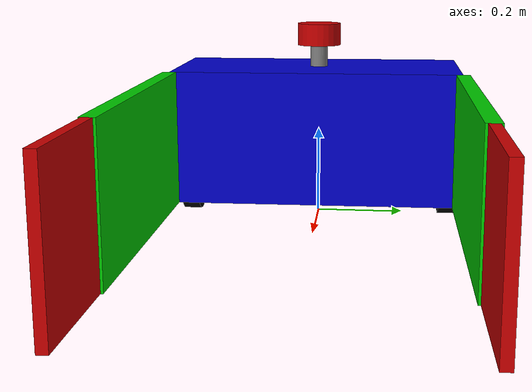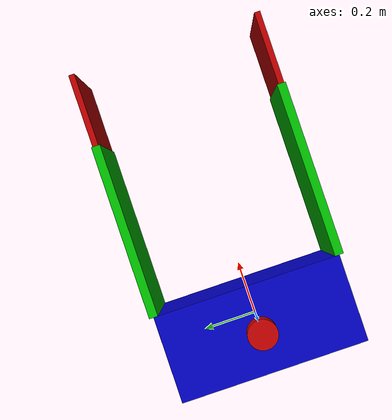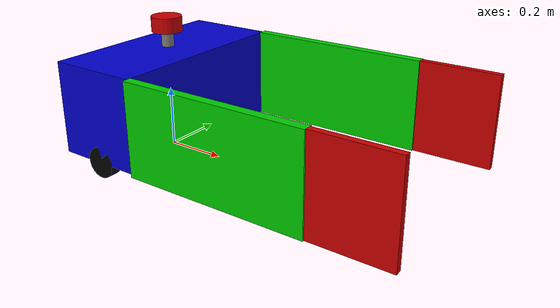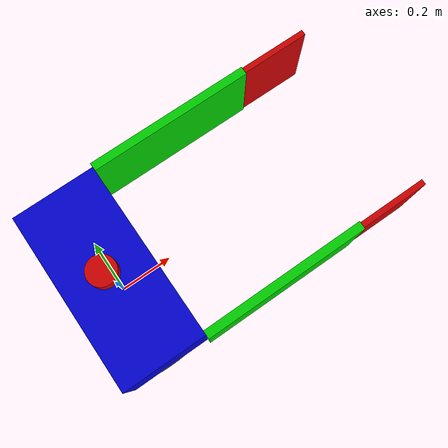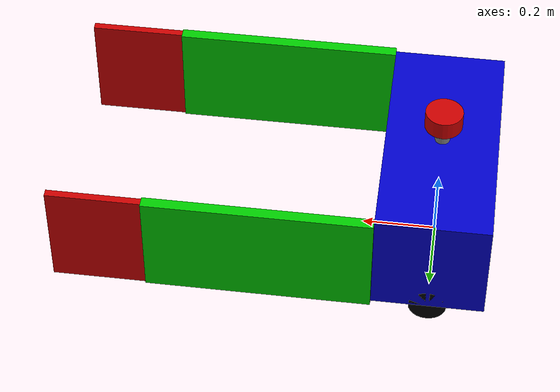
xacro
<?xml version="1.0"?>
<robot xmlns:xacro="http://www.ros.org/wiki/xacro" name="ballbot">

  <!-- DIMENSIONS AND PROPERTIES (ADJUSTED) -->

  <!-- Chassis (Base) Dimensions -->
  <xacro:property name="chassis_len" value="0.30"/>   <!-- Length remains 30cm -->
  <xacro:property name="chassis_width" value="0.65"/> <!-- Width 65cm -->
  <xacro:property name="chassis_height" value="0.3"/>
  <xacro:property name="chassis_mass" value="3.0"/>
  <xacro:property name="chassis_z_offset" value="0.20"/>

  <!-- Wheel Dimensions -->
  <xacro:property name="wheel_radius" value="0.05"/>
  <xacro:property name="wheel_width" value="0.04"/>
  <xacro:property name="wheel_mass" value="0.5"/>
  <!-- Adjusted wheel separation to fit the chassis (0.65m width) -->
  <xacro:property name="wheel_y_offset" value="0.305"/>
  <xacro:property name="wheel_z_offset" value="0.05"/>

  <!-- Castor Dimensions -->
  <xacro:property name="castor_radius" value="0.04"/>
  <xacro:property name="castor_mass" value="1.5"/>
  <!-- Castor position remains the same as chassis length is unchanged -->
  <xacro:property name="castor_x_offset" value="-0.12"/>

  <!-- Arm and Flap Dimensions -->
  <xacro:property name="arm_len" value="0.60"/>     <!-- User updated: 0.60m -->
  <xacro:property name="arm_width" value="0.03"/>   <!-- Arm width remains 3cm -->
  <xacro:property name="arm_height" value="0.3"/>
  <xacro:property name="arm_mass" value="0.04"/>
  <xacro:property name="arm_angle" value="0.0"/>    <!-- Straight forward -->
  <xacro:property name="flap_len" value="0.25"/>    <!-- User updated: 0.25m -->
  <xacro:property name="flap_width" value="0.02"/>
  <xacro:property name="flap_height" value="0.3"/>
  <xacro:property name="flap_mass" value="0.01"/>

  <material name="blue"><color rgba="0.0 0.0 0.8 1.0"/></material>
  <material name="black"><color rgba="0.0 0.0 0.0 1.0"/></material>
  <material name="grey"><color rgba="0.5 0.5 0.5 1.0"/></material>
  <material name="green"><color rgba="0.0 0.8 0.0 1.0"/></material>
  <material name="red"><color rgba="0.8 0.0 0.0 1.0"/></material>

  <!-- MACROS -->

  <xacro:macro name="box_inertia" params="m x y z">
    <inertial>
      <mass value="${m}"/>
      <inertia ixx="${m/12.0 * (y*y + z*z)}" ixy="0.0" ixz="0.0"
               iyy="${m/12.0 * (x*x + z*z)}" iyz="0.0"
               izz="${m/12.0 * (x*x + y*y)}"/>
    </inertial>
  </xacro:macro>

  <xacro:macro name="cylinder_inertia" params="m r h">
    <inertial>
      <mass value="${m}"/>
      <inertia ixx="${m/12.0 * (3*r*r + h*h)}" ixy="0.0" ixz="0.0"
               iyy="${m/12.0 * (3*r*r + h*h)}" iyz="0.0"
               izz="${m/2.0 * (r*r)}"/>
    </inertial>
  </xacro:macro>

  <xacro:macro name="sphere_inertia" params="m r">
    <inertial>
      <mass value="${m}"/>
      <inertia ixx="${2.0/5.0 * m * r*r}" ixy="0.0" ixz="0.0"
               iyy="${2.0/5.0 * m * r*r}" iyz="0.0"
               izz="${2.0/5.0 * m * r*r}"/>
    </inertial>
  </xacro:macro>

  <xacro:macro name="drive_wheel" params="prefix reflect">
    <link name="${prefix}_wheel">
      <visual>
        <origin xyz="0 0 0" rpy="${pi/2} 0 0"/>
        <geometry>
          <cylinder radius="${wheel_radius}" length="${wheel_width}"/>
        </geometry>
        <material name="black"/>
      </visual>
      <collision>
        <origin xyz="0 0 0" rpy="${pi/2} 0 0"/>
        <geometry>
          <cylinder radius="${wheel_radius}" length="${wheel_width}"/>
        </geometry>
      </collision>
      <xacro:cylinder_inertia m="${wheel_mass}" r="${wheel_radius}" h="${wheel_width}"/>
    </link>

    <joint name="${prefix}_wheel_joint" type="continuous">
      <parent link="base_link"/>
      <child link="${prefix}_wheel"/>
      <origin xyz="0 ${reflect * wheel_y_offset} ${wheel_z_offset}" rpy="0 0 0"/>
      <axis xyz="0 1 0"/>
      <limit effort="50.0" velocity="20.0"/>
    </joint>

    <gazebo reference="${prefix}_wheel">
      <mu1>2.0</mu1>
      <mu2>2.0</mu2>
      <kp>1000000.0</kp>
      <kd>100.0</kd>
    </gazebo>
  </xacro:macro>

  <xacro:macro name="collector_arm" params="prefix reflect angle limit_lower limit_upper">
    <link name="${prefix}_arm">
      <visual>
        <!-- Offset the visual to place the arm's center half its length forward,
             making the joint origin the base of the arm (x=0) -->
        <origin xyz="${arm_len/2} 0 0" rpy="0 0 0"/>
        <geometry>
          <box size="${arm_len} ${arm_width} ${arm_height}"/>
        </geometry>
        <material name="green"/>
      </visual>
      <collision>
        <origin xyz="${arm_len/2} 0 0" rpy="0 0 0"/>
        <geometry>
          <box size="${arm_len} ${arm_width} ${arm_height}"/>
        </geometry>
      </collision>
      <xacro:box_inertia m="${arm_mass}" x="${arm_len}" y="${arm_width}" z="${arm_height}"/>
    </link>

    <joint name="${prefix}_arm_joint" type="fixed">
      <parent link="base_link"/>
      <child link="${prefix}_arm"/>
      <!-- Attach point at the front edge of the chassis (x=chassis_len/2)
           and set Y position exactly to the chassis edge (chassis_width/2) -->
      <origin xyz="${chassis_len/2} ${reflect * chassis_width/2} ${chassis_z_offset}" rpy="0 0 ${reflect * angle}"/>
    </joint>

    <link name="${prefix}_flap">
      <visual>
        <origin xyz="${flap_len/2} 0 0" rpy="0 0 0"/>
        <geometry>
          <box size="${flap_len} ${flap_width} ${flap_height}"/>
        </geometry>
        <material name="red"/>
      </visual>
      <collision>
        <origin xyz="${flap_len/2} 0 0" rpy="0 0 0"/>
        <geometry>
          <box size="${flap_len} ${flap_width} ${flap_height}"/>
        </geometry>
      </collision>
      <inertial>
        <origin xyz="${flap_len/2} 0 0" rpy="0 0 0"/>
        <mass value="${flap_mass}"/>
        <inertia ixx="${flap_mass/12.0 * (flap_width*flap_width + flap_height*flap_height)}" ixy="0.0" ixz="0.0"
                 iyy="${flap_mass/12.0 * (flap_len*flap_len + flap_height*flap_height)}" iyz="0.0"
                 izz="${flap_mass/12.0 * (flap_len*flap_len + flap_width*flap_width)}"/>
      </inertial>
    </link>

    <joint name="${prefix}_flap_joint" type="revolute">
      <parent link="${prefix}_arm"/>
      <child link="${prefix}_flap"/>
      <!-- Flap joint origin at the end of the arm link (x=arm_len) -->
      <origin xyz="${arm_len} 0 0" rpy="0 0 0"/>
      <axis xyz="0 0 1"/>
      <limit lower="${limit_lower}" upper="${limit_upper}" effort="10.0" velocity="1.0"/>
    </joint>
  </xacro:macro>

  <!-- ROBOT STRUCTURE -->

  <link name="base_footprint"/>

  <joint name="base_joint" type="fixed">
    <parent link="base_footprint"/>
    <child link="base_link"/>
    <origin xyz="0 0 0" rpy="0 0 0"/>
  </joint>

  <link name="base_link">
    <visual>
      <origin xyz="0 0 ${chassis_z_offset}" rpy="0 0 0"/>
      <geometry>
        <box size="${chassis_len} ${chassis_width} ${chassis_height}"/>
      </geometry>
      <material name="blue"/>
    </visual>
    <collision>
      <origin xyz="0 0 ${chassis_z_offset}" rpy="0 0 0"/>
      <geometry>
        <box size="${chassis_len} ${chassis_width} ${chassis_height}"/>
      </geometry>
    </collision>
    <inertial>
        <origin xyz="0 0 ${chassis_z_offset}" rpy="0 0 0"/>
        <mass value="${chassis_mass}"/>
        <inertia ixx="${chassis_mass/12.0 * (chassis_width*chassis_width + chassis_height*chassis_height)}" ixy="0.0" ixz="0.0"
                 iyy="${chassis_mass/12.0 * (chassis_len*chassis_len + chassis_height*chassis_height)}" iyz="0.0"
                 izz="${chassis_mass/12.0 * (chassis_len*chassis_len + chassis_width*chassis_width)}"/>
    </inertial>
  </link>

  <xacro:drive_wheel prefix="left" reflect="1"/>
  <xacro:drive_wheel prefix="right" reflect="-1"/>

  <link name="castor_wheel">
    <visual>
      <geometry>
        <sphere radius="${castor_radius}"/>
      </geometry>
      <material name="grey"/>
    </visual>
    <collision>
      <geometry>
        <sphere radius="${castor_radius}"/>
      </geometry>
    </collision>
    <xacro:sphere_inertia m="${castor_mass}" r="${castor_radius}"/>
  </link>

  <joint name="castor_wheel_joint" type="fixed">
    <parent link="base_link"/>
    <child link="castor_wheel"/>
    <origin xyz="${castor_x_offset} 0 ${castor_radius}" rpy="0 0 0"/>
  </joint>

  <link name="vertical_pole">
    <visual>
      <geometry>
        <cylinder radius="0.02" length="0.05"/>
      </geometry>
      <material name="grey"/>
    </visual>
    <collision>
      <geometry>
        <cylinder radius="0.02" length="0.05"/>
      </geometry>
    </collision>
    <xacro:cylinder_inertia m="0.1" r="0.02" h="0.05"/>
  </link>

  <joint name="vertical_pole_joint" type="fixed">
    <parent link="base_link"/>
    <child link="vertical_pole"/>
    <origin xyz="0 0 0.375" rpy="0 0 0"/>
  </joint>

  <link name="lidar_link">
    <visual>
      <geometry>
        <cylinder radius="0.05" length="0.05"/>
      </geometry>
      <material name="red"/>
    </visual>
    <collision>
      <geometry>
        <cylinder radius="0.05" length="0.05"/>
      </geometry>
    </collision>
    <xacro:cylinder_inertia m="0.3" r="0.05" h="0.05"/>
  </link>

  <joint name="lidar_joint" type="fixed">
    <parent link="vertical_pole"/>
    <child link="lidar_link"/>
    <origin xyz="0 0 0.05" rpy="0 0 0"/>
  </joint>

  <!-- === LIDAR SENSOR PLUGIN START === -->
  <gazebo reference="lidar_link">
    <sensor name="lidar" type="gpu_lidar">
      <pose>0 0 0 0 0 0</pose>
      <always_on>true</always_on>
      <visualize>true</visualize>
      <update_rate>10</update_rate>
      <topic>/scan</topic> <!-- Force topic name to /scan -->

      <frame_id>lidar_link</frame_id>
      <gz_frame_id>lidar_link</gz_frame_id>

      <ray>
        <scan>
          <horizontal>
            <samples>360</samples>
            <resolution>1</resolution>
            <min_angle>-3.14</min_angle>
            <max_angle>3.14</max_angle>
          </horizontal>
        </scan>
        <range>
          <min>0.1</min>
          <max>10.0</max>
        </range>
      </ray>
    </sensor>
  </gazebo>
  <!-- === LIDAR SENSOR PLUGIN END === -->

<!-- === IMU SENSOR PLUGIN START === -->
<gazebo reference="imu_link">
  <sensor name="imu_sensor" type="imu">
    <pose>0 0 0 0 0 0</pose>  <!-- Now relative to imu_link -->

    <!-- Update rate (BNO055 can do 100Hz) -->
    <always_on>true</always_on>
    <update_rate>100</update_rate>
    <visualize>false</visualize>

    <!-- Topic name -->
    <topic>/imu_raw</topic>

    <!-- IMU sensor configuration -->
    <imu>
      <!-- Angular velocity (gyroscope) -->
      <angular_velocity>
        <x>
          <noise type="gaussian">
            <mean>0.0</mean>
            <stddev>0.0002</stddev>
            <bias_mean>0.0000075</bias_mean>
            <bias_stddev>0.0000008</bias_stddev>
          </noise>
        </x>
        <y>
          <noise type="gaussian">
            <mean>0.0</mean>
            <stddev>0.0002</stddev>
            <bias_mean>0.0000075</bias_mean>
            <bias_stddev>0.0000008</bias_stddev>
          </noise>
        </y>
        <z>
          <noise type="gaussian">
            <mean>0.0</mean>
            <stddev>0.0002</stddev>
            <bias_mean>0.0000075</bias_mean>
            <bias_stddev>0.0000008</bias_stddev>
          </noise>
        </z>
      </angular_velocity>

      <!-- Linear acceleration (accelerometer) -->
      <linear_acceleration>
        <x>
          <noise type="gaussian">
            <mean>0.0</mean>
            <stddev>0.01</stddev>
            <bias_mean>0.005</bias_mean>
            <bias_stddev>0.0002</bias_stddev>
          </noise>
        </x>
        <y>
          <noise type="gaussian">
            <mean>0.0</mean>
            <stddev>0.01</stddev>
            <bias_mean>0.005</bias_mean>
            <bias_stddev>0.0002</bias_stddev>
          </noise>
        </y>
        <z>
          <noise type="gaussian">
            <mean>0.0</mean>
            <stddev>0.01</stddev>
            <bias_mean>0.005</bias_mean>
            <bias_stddev>0.0002</bias_stddev>
          </noise>
        </z>
      </linear_acceleration>
    </imu>
  </sensor>
</gazebo>

<!-- Create a separate imu_link for proper TF tree -->
<link name="imu_link">
  <visual>
    <geometry>
      <box size="0.02 0.02 0.01"/>
    </geometry>
    <material name="grey"/>
  </visual>
  <collision>
    <geometry>
      <box size="0.02 0.02 0.01"/>
    </geometry>
  </collision>
  <xacro:box_inertia m="0.01" x="0.02" y="0.02" z="0.01"/>
</link>

<joint name="imu_joint" type="fixed">
  <parent link="base_link"/>
  <child link="imu_link"/>
  <!-- Mount IMU in the center of the chassis -->
  <origin xyz="0 0 0.2" rpy="0 0 0"/>
</joint>
<!-- === IMU SENSOR PLUGIN END === -->

  <!-- Arms are now straight (angle=0.0), longer (arm_len=0.60), skinnier (arm_width=0.03), and flaps are 0.25m -->
  <xacro:collector_arm prefix="left" reflect="1" angle="${arm_angle}" limit_lower="-1.57" limit_upper="0.0"/>
  <xacro:collector_arm prefix="right" reflect="-1" angle="${arm_angle}" limit_lower="0.0" limit_upper="1.57"/>

  <ros2_control name="GazeboSimSystem" type="system">
    <hardware>
      <plugin>gz_ros2_control/GazeboSimSystem</plugin>
    </hardware>

    <joint name="left_wheel_joint">
      <command_interface name="velocity">
        <param name="min">-10</param>
        <param name="max">10</param>
      </command_interface>
      <state_interface name="velocity"/>
      <state_interface name="position"/>
    </joint>

    <joint name="right_wheel_joint">
      <command_interface name="velocity">
        <param name="min">-10</param>
        <param name="max">10</param>
      </command_interface>
      <state_interface name="velocity"/>
      <state_interface name="position"/>
    </joint>

    <joint name="left_flap_joint">
      <command_interface name="position"/>
      <state_interface name="position"/>
      <state_interface name="velocity"/>
    </joint>

    <joint name="right_flap_joint">
      <command_interface name="position"/>
      <state_interface name="position"/>
      <state_interface name="velocity"/>
    </joint>
  </ros2_control>

  <gazebo>
    <plugin filename="gz_ros2_control-system" name="gz_ros2_control::GazeboSimROS2ControlPlugin">
      <parameters>$(find ballbot_control)/config/ballbot_controllers.yaml</parameters>
    </plugin>
  </gazebo>

  <gazebo reference="castor_wheel">
    <mu1>0.001</mu1>
    <mu2>0.001</mu2>
  </gazebo>

</robot>
